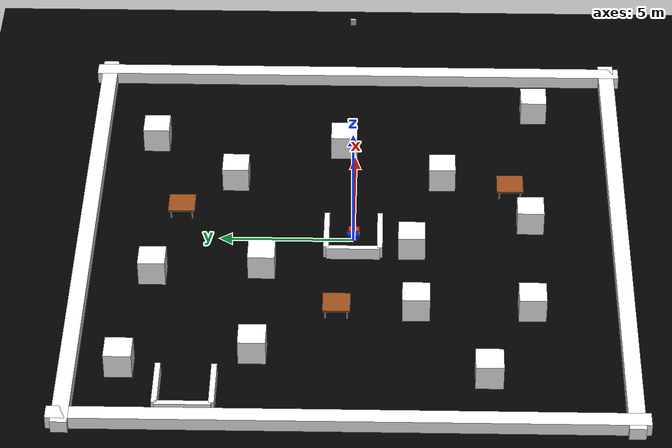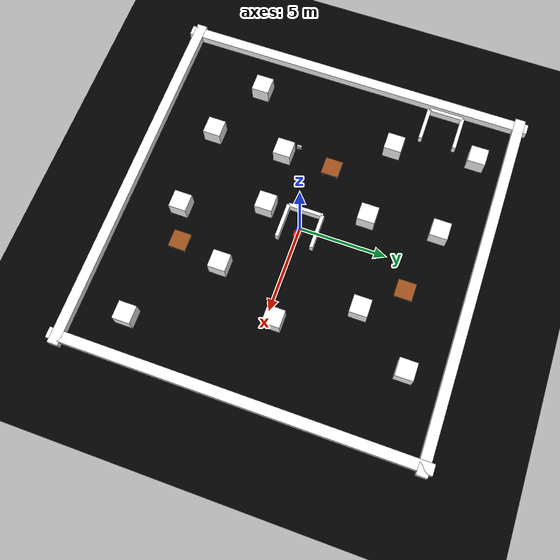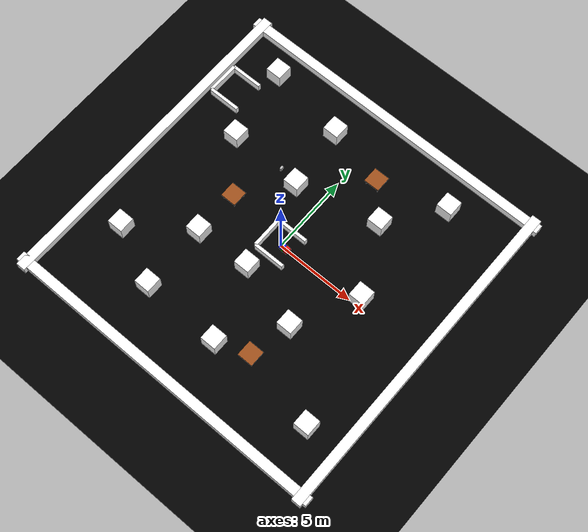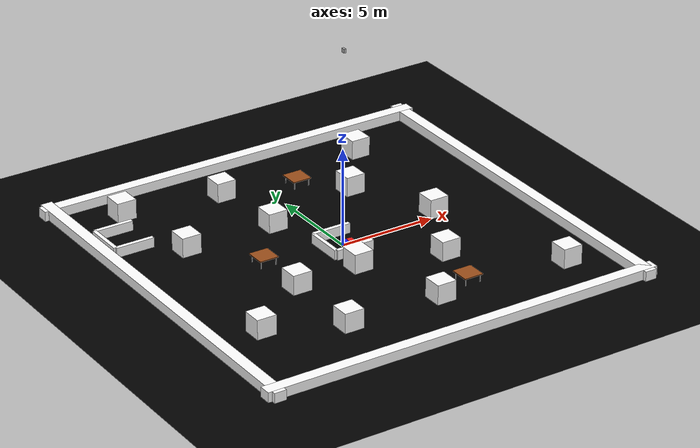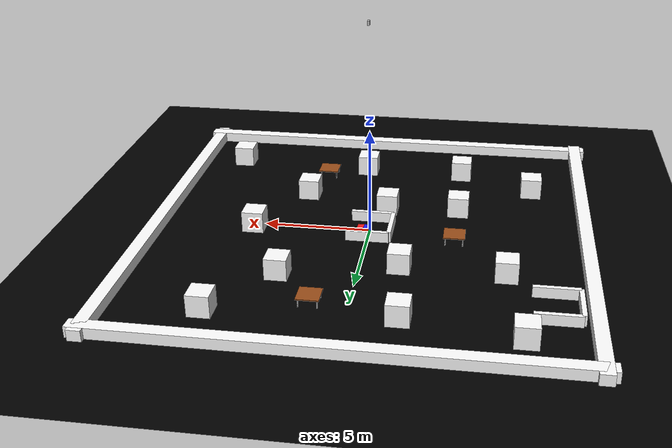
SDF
<sdf version='1.10'>
  <world name='empty'>
    <physics name='1ms' type='ignored'>
      <max_step_size>0.001</max_step_size>
      <real_time_factor>1</real_time_factor>
      <real_time_update_rate>1000</real_time_update_rate>
    </physics>
    <plugin name='gz::sim::systems::Physics' filename='gz-sim-physics-system'/>
    <plugin name='gz::sim::systems::UserCommands' filename='gz-sim-user-commands-system'/>
    <plugin name='gz::sim::systems::SceneBroadcaster' filename='gz-sim-scene-broadcaster-system'/>
    <plugin name='gz::sim::systems::Contact' filename='gz-sim-contact-system'/>
    <plugin name='gz::sim::systems::Sensors' filename='gz-sim-sensors-system'/>
    <gravity>0 0 -9.8000000000000007</gravity>
    <magnetic_field>5.5644999999999998e-06 2.2875799999999999e-05 -4.2388400000000002e-05</magnetic_field>
    <atmosphere type='adiabatic'/>
    <scene>
      <ambient>0.400000006 0.400000006 0.400000006 1</ambient>
      <background>0.699999988 0.699999988 0.699999988 1</background>
      <shadows>true</shadows>
    </scene>
    <model name='ground_plane'>
      <static>true</static>
      <link name='link'>
        <collision name='collision'>
          <geometry>
            <plane>
              <normal>0 0 1</normal>
              <size>100 100</size>
            </plane>
          </geometry>
          <surface>
            <friction>
              <ode/>
            </friction>
            <bounce/>
            <contact/>
          </surface>
        </collision>
        <visual name='visual'>
          <geometry>
            <plane>
              <normal>0 0 1</normal>
              <size>100 100</size>
            </plane>
          </geometry>
          <material>
            <ambient>0 0 0 1</ambient>
            <diffuse>0 0 0 1</diffuse>
            <specular>0 0 0 1</specular>
          </material>
        </visual>
        <pose>0 0 0 0 0 0</pose>
        <inertial>
          <pose>0 0 0 0 0 0</pose>
          <mass>1</mass>
          <inertia>
            <ixx>1</ixx>
            <ixy>0</ixy>
            <ixz>0</ixz>
            <iyy>1</iyy>
            <iyz>0</iyz>
            <izz>1</izz>
          </inertia>
        </inertial>
        <enable_wind>false</enable_wind>
      </link>
      <pose>0 0 0 0 0 0</pose>
      <self_collide>false</self_collide>
    </model>
    <model name='amr_with_markers'>
      <pose>0.28327873495508904 -0.0036391235036511062 -0.019943896375965858 -1.4163279016167854e-07 0.031948290944216605 -0.061960845039942369</pose>
      <static>false</static>
      <link name='base_link'>
        <pose>0 0 0.13 0 0 0</pose>
        <inertial>
          <mass>20</mass>
          <inertia>
            <ixx>1</ixx>
            <iyy>1</iyy>
            <izz>1</izz>
            <ixy>0</ixy>
            <ixz>0</ixz>
            <iyz>0</iyz>
          </inertia>
          <pose>0 0 0 0 0 0</pose>
        </inertial>
        <collision name='base_collision'>
          <geometry>
            <box>
              <size>0.59999999999999998 0.40000000000000002 0.17999999999999999</size>
            </box>
          </geometry>
          <surface>
            <friction>
              <ode/>
            </friction>
            <bounce/>
            <contact/>
          </surface>
        </collision>
        <visual name='base_visual_red'>
          <pose>0.14999999999999999 0 0 0 0 0</pose>
          <geometry>
            <box>
              <size>0.29999999999999999 0.40000000000000002 0.17999999999999999</size>
            </box>
          </geometry>
          <material>
            <ambient>0.899999976 0.100000001 0.100000001 1</ambient>
            <diffuse>0.949999988 0.100000001 0.100000001 1</diffuse>
          </material>
        </visual>
        <visual name='base_visual_blue'>
          <pose>-0.14999999999999999 0 0 0 0 0</pose>
          <geometry>
            <box>
              <size>0.29999999999999999 0.40000000000000002 0.17999999999999999</size>
            </box>
          </geometry>
          <material>
            <ambient>0.100000001 0.100000001 0.899999976 1</ambient>
            <diffuse>0.100000001 0.100000001 0.949999988 1</diffuse>
          </material>
        </visual>
        <enable_wind>false</enable_wind>
      </link>
      <link name='marker_front'>
        <pose>0.17999999999999949 -3.9898639947466563e-17 0.19999999999999982 -8.6736173798840355e-19 1.7076184216646695e-18 4.8572257327350599e-17</pose>
        <visual name='marker_front_visual'>
          <geometry>
            <cylinder>
              <radius>0.059999999999999998</radius>
              <length>0.02</length>
            </cylinder>
          </geometry>
          <material>
            <ambient>0.800000012 0.100000001 0.100000001 1</ambient>
            <diffuse>0.899999976 0.100000001 0.100000001 1</diffuse>
          </material>
        </visual>
        <inertial>
          <pose>0 0 0 0 0 0</pose>
          <mass>1</mass>
          <inertia>
            <ixx>1</ixx>
            <ixy>0</ixy>
            <ixz>0</ixz>
            <iyy>1</iyy>
            <iyz>0</iyz>
            <izz>1</izz>
          </inertia>
        </inertial>
        <enable_wind>false</enable_wind>
      </link>
      <link name='marker_rear'>
        <pose>-0.18000000000000044 -3.8163916471489756e-17 0.19999999999999998 -8.6736173798840355e-19 1.7076184216646695e-18 4.8572257327350599e-17</pose>
        <visual name='marker_rear_visual'>
          <geometry>
            <cylinder>
              <radius>0.059999999999999998</radius>
              <length>0.02</length>
            </cylinder>
          </geometry>
          <material>
            <ambient>0.100000001 0.100000001 0.800000012 1</ambient>
            <diffuse>0.100000001 0.100000001 0.899999976 1</diffuse>
          </material>
        </visual>
        <inertial>
          <pose>0 0 0 0 0 0</pose>
          <mass>1</mass>
          <inertia>
            <ixx>1</ixx>
            <ixy>0</ixy>
            <ixz>0</ixz>
            <iyy>1</iyy>
            <iyz>0</iyz>
            <izz>1</izz>
          </inertia>
        </inertial>
        <enable_wind>false</enable_wind>
      </link>
      <joint name='joint_marker_front' type='fixed'>
        <parent>base_link</parent>
        <child>marker_front</child>
        <pose>0 1.12104e-44 0 0 -6.2199800000000005e-60 0</pose>
      </joint>
      <joint name='joint_marker_rear' type='fixed'>
        <parent>base_link</parent>
        <child>marker_rear</child>
        <pose>0 0 0 0 -6.2199800000000005e-60 0</pose>
      </joint>
      <link name='left_wheel_link'>
        <pose>-7.2102551151864702e-09 0.19999999901340215 0.11000000404654071 1.185098994914188e-08 0.3925831217790447 4.8790899762573074e-09</pose>
        <visual name='left_wheel_visual'>
          <pose>0 0 0 1.57079632679 0 0</pose>
          <geometry>
            <cylinder>
              <radius>0.089999999999999997</radius>
              <length>0.059999999999999998</length>
            </cylinder>
          </geometry>
          <material>
            <ambient>0 0.600000024 0 1</ambient>
            <diffuse>0 0.800000012 0 1</diffuse>
          </material>
        </visual>
        <collision name='left_wheel_collision'>
          <pose>0 0 0 1.57079632679 0 0</pose>
          <geometry>
            <cylinder>
              <radius>0.089999999999999997</radius>
              <length>0.059999999999999998</length>
            </cylinder>
          </geometry>
          <surface>
            <friction>
              <ode>
                <mu>1</mu>
                <mu2>1</mu2>
              </ode>
            </friction>
            <bounce/>
            <contact/>
          </surface>
        </collision>
        <inertial>
          <pose>0 0 0 0 0 0</pose>
          <mass>1</mass>
          <inertia>
            <ixx>1</ixx>
            <ixy>0</ixy>
            <ixz>0</ixz>
            <iyy>1</iyy>
            <iyz>0</iyz>
            <izz>1</izz>
          </inertia>
        </inertial>
        <enable_wind>false</enable_wind>
      </link>
      <link name='right_wheel_link'>
        <pose>-1.8217021224842256e-09 -0.20000000025414549 0.10999999991414082 2.9181348811727638e-09 0.25927390448412618 8.3710288572921954e-10</pose>
        <visual name='right_wheel_visual'>
          <pose>0 0 0 1.57079632679 0 0</pose>
          <geometry>
            <cylinder>
              <radius>0.089999999999999997</radius>
              <length>0.059999999999999998</length>
            </cylinder>
          </geometry>
          <material>
            <ambient>0 0.600000024 0 1</ambient>
            <diffuse>0 0.800000012 0 1</diffuse>
          </material>
        </visual>
        <collision name='right_wheel_collision'>
          <pose>0 0 0 1.57079632679 0 0</pose>
          <geometry>
            <cylinder>
              <radius>0.089999999999999997</radius>
              <length>0.059999999999999998</length>
            </cylinder>
          </geometry>
          <surface>
            <friction>
              <ode>
                <mu>1</mu>
                <mu2>1</mu2>
              </ode>
            </friction>
            <bounce/>
            <contact/>
          </surface>
        </collision>
        <inertial>
          <pose>0 0 0 0 0 0</pose>
          <mass>1</mass>
          <inertia>
            <ixx>1</ixx>
            <ixy>0</ixy>
            <ixz>0</ixz>
            <iyy>1</iyy>
            <iyz>0</iyz>
            <izz>1</izz>
          </inertia>
        </inertial>
        <enable_wind>false</enable_wind>
      </link>
      <joint name='left_wheel_joint' type='revolute'>
        <parent>base_link</parent>
        <child>left_wheel_link</child>
        <axis>
          <xyz>0 1 0</xyz>
          <limit>
            <lower>-inf</lower>
            <upper>inf</upper>
            <effort>inf</effort>
            <velocity>inf</velocity>
            <stiffness>100000000</stiffness>
            <dissipation>1</dissipation>
          </limit>
          <dynamics>
            <spring_reference>0</spring_reference>
            <spring_stiffness>0</spring_stiffness>
            <damping>0</damping>
            <friction>0</friction>
          </dynamics>
        </axis>
        <pose>1.3877799999999999e-17 -2.7755599999999997e-17 -3.46945e-17 0 8.9981399999999995e-34 0</pose>
      </joint>
      <joint name='right_wheel_joint' type='revolute'>
        <parent>base_link</parent>
        <child>right_wheel_link</child>
        <axis>
          <xyz>-7.1136400041881005e-34 1 1.521046877079524e-82</xyz>
          <limit>
            <lower>-inf</lower>
            <upper>inf</upper>
            <effort>inf</effort>
            <velocity>inf</velocity>
            <stiffness>100000000</stiffness>
            <dissipation>1</dissipation>
          </limit>
          <dynamics>
            <spring_reference>0</spring_reference>
            <spring_stiffness>0</spring_stiffness>
            <damping>0</damping>
            <friction>0</friction>
          </dynamics>
        </axis>
        <pose>0 0 -6.9388900000000004e-18 1.5210499999999999e-82 4.2764200000000003e-49 7.1136399999999997e-34</pose>
      </joint>
      <link name='caster_front'>
        <pose>0.21999993660178496 -8.0594435725861446e-09 0.057000410181307998 3.1415924291067299 -0.88693995904179279 -3.1415924856121724</pose>
        <visual name='caster_front_visual'>
          <geometry>
            <sphere>
              <radius>0.029999999999999999</radius>
            </sphere>
          </geometry>
          <material>
            <ambient>0.200000003 0.200000003 0.200000003 1</ambient>
          </material>
        </visual>
        <collision name='caster_front_collision'>
          <geometry>
            <sphere>
              <radius>0.029999999999999999</radius>
            </sphere>
          </geometry>
          <surface>
            <friction>
              <ode/>
            </friction>
            <bounce/>
            <contact/>
          </surface>
        </collision>
        <inertial>
          <mass>0.02</mass>
          <pose>0 0 0 0 0 0</pose>
          <inertia>
            <ixx>1</ixx>
            <ixy>0</ixy>
            <ixz>0</ixz>
            <iyy>1</iyy>
            <iyz>0</iyz>
            <izz>1</izz>
          </inertia>
        </inertial>
        <enable_wind>false</enable_wind>
      </link>
      <joint name='caster_front_joint' type='revolute'>
        <parent>base_link</parent>
        <child>caster_front</child>
        <axis>
          <xyz>5.8899436955827296e-92 1 -1.8223031978702888e-62</xyz>
          <limit>
            <lower>-inf</lower>
            <upper>inf</upper>
            <effort>inf</effort>
            <velocity>inf</velocity>
            <stiffness>100000000</stiffness>
            <dissipation>1</dissipation>
          </limit>
          <dynamics>
            <spring_reference>0</spring_reference>
            <spring_stiffness>0</spring_stiffness>
            <damping>0</damping>
            <friction>0</friction>
          </dynamics>
        </axis>
        <pose>-2.7755599999999997e-17 -9.8607599999999995e-32 0 0 -2.8621200000000001e-30 0</pose>
      </joint>
      <link name='caster_rear'>
        <pose>-0.2200000586417887 -5.4067329120777163e-09 0.056999668690252747 3.1415922467639543 1.214703650003369 3.1415922662570672</pose>
        <visual name='caster_rear_visual'>
          <geometry>
            <sphere>
              <radius>0.029999999999999999</radius>
            </sphere>
          </geometry>
          <material>
            <ambient>0.200000003 0.200000003 0.200000003 1</ambient>
          </material>
        </visual>
        <collision name='caster_rear_collision'>
          <geometry>
            <sphere>
              <radius>0.029999999999999999</radius>
            </sphere>
          </geometry>
          <surface>
            <friction>
              <ode/>
            </friction>
            <bounce/>
            <contact/>
          </surface>
        </collision>
        <inertial>
          <mass>0.02</mass>
          <pose>0 0 0 0 0 0</pose>
          <inertia>
            <ixx>1</ixx>
            <ixy>0</ixy>
            <ixz>0</ixz>
            <iyy>1</iyy>
            <iyz>0</iyz>
            <izz>1</izz>
          </inertia>
        </inertial>
        <enable_wind>false</enable_wind>
      </link>
      <joint name='caster_rear_joint' type='revolute'>
        <parent>base_link</parent>
        <child>caster_rear</child>
        <axis>
          <xyz>2.4651903288156619e-32 1 -9.8973418179337338e-62</xyz>
          <limit>
            <lower>-inf</lower>
            <upper>inf</upper>
            <effort>inf</effort>
            <velocity>inf</velocity>
            <stiffness>100000000</stiffness>
            <dissipation>1</dissipation>
          </limit>
          <dynamics>
            <spring_reference>0</spring_reference>
            <spring_stiffness>0</spring_stiffness>
            <damping>0</damping>
            <friction>0</friction>
          </dynamics>
        </axis>
        <pose>5.5511199999999995e-17 7.3955699999999999e-32 -2.7755599999999997e-17 0 4.3376999999999999e-30 0</pose>
      </joint>
      <plugin name='ignition::gazebo::systems::DiffDrive' filename='libignition-gazebo-diff-drive-system.so'>
        <left_joint>left_wheel_joint</left_joint>
        <right_joint>right_wheel_joint</right_joint>
        <wheel_separation>0.40</wheel_separation>
        <wheel_radius>0.09</wheel_radius>
        <topic>/cmd_vel</topic>
        <frame_id>odom</frame_id>
        <child_frame_id>base_link</child_frame_id>
        <odom_publish_frequency>100</odom_publish_frequency>
      </plugin>
      <self_collide>false</self_collide>
    </model>
    <model name='box'>
      <pose>3.3872900000000001 4.5676500000000004 0.5 1.0048e-21 -2.4640900000000001e-21 -3.9210800000000001e-22</pose>
      <link name='box_link'>
        <inertial>
          <inertia>
            <ixx>0.16666</ixx>
            <ixy>0</ixy>
            <ixz>0</ixz>
            <iyy>0.16666</iyy>
            <iyz>0</iyz>
            <izz>0.16666</izz>
          </inertia>
          <mass>1</mass>
          <pose>0 0 0 0 0 0</pose>
        </inertial>
        <collision name='box_collision'>
          <geometry>
            <box>
              <size>1 1 1</size>
            </box>
          </geometry>
          <surface>
            <friction>
              <ode/>
            </friction>
            <bounce/>
            <contact/>
          </surface>
        </collision>
        <visual name='box_visual'>
          <geometry>
            <box>
              <size>1 1 1</size>
            </box>
          </geometry>
          <material>
            <ambient>1 1 1 1</ambient>
            <diffuse>1 1 1 1</diffuse>
            <specular>0.100000001 0.100000001 0.100000001 1</specular>
          </material>
        </visual>
        <pose>0 0 0 0 0 0</pose>
        <enable_wind>false</enable_wind>
      </link>
      <static>false</static>
      <self_collide>false</self_collide>
    </model>
    <model name='box_1'>
      <pose>-4.0205500000000001 -2.35168 0.5 1.0048e-21 -2.4640900000000001e-21 -3.9210800000000001e-22</pose>
      <link name='box_link'>
        <inertial>
          <inertia>
            <ixx>0.16666</ixx>
            <ixy>0</ixy>
            <ixz>0</ixz>
            <iyy>0.16666</iyy>
            <iyz>0</iyz>
            <izz>0.16666</izz>
          </inertia>
          <mass>1</mass>
          <pose>0 0 0 0 0 0</pose>
        </inertial>
        <collision name='box_collision'>
          <geometry>
            <box>
              <size>1 1 1</size>
            </box>
          </geometry>
          <surface>
            <friction>
              <ode/>
            </friction>
            <bounce/>
            <contact/>
          </surface>
        </collision>
        <visual name='box_visual'>
          <geometry>
            <box>
              <size>1 1 1</size>
            </box>
          </geometry>
          <material>
            <ambient>1 1 1 1</ambient>
            <diffuse>1 1 1 1</diffuse>
            <specular>0.100000001 0.100000001 0.100000001 1</specular>
          </material>
        </visual>
        <pose>0 0 0 0 0 0</pose>
        <enable_wind>false</enable_wind>
      </link>
      <static>false</static>
      <self_collide>false</self_collide>
    </model>
    <model name='box_2'>
      <pose>3.4940899999999999 -3.3550800000000001 0.5 1.0048e-21 -2.4640900000000001e-21 -3.9210800000000001e-22</pose>
      <link name='box_link'>
        <inertial>
          <inertia>
            <ixx>0.16666</ixx>
            <ixy>0</ixy>
            <ixz>0</ixz>
            <iyy>0.16666</iyy>
            <iyz>0</iyz>
            <izz>0.16666</izz>
          </inertia>
          <mass>1</mass>
          <pose>0 0 0 0 0 0</pose>
        </inertial>
        <collision name='box_collision'>
          <geometry>
            <box>
              <size>1 1 1</size>
            </box>
          </geometry>
          <surface>
            <friction>
              <ode/>
            </friction>
            <bounce/>
            <contact/>
          </surface>
        </collision>
        <visual name='box_visual'>
          <geometry>
            <box>
              <size>1 1 1</size>
            </box>
          </geometry>
          <material>
            <ambient>1 1 1 1</ambient>
            <diffuse>1 1 1 1</diffuse>
            <specular>0.100000001 0.100000001 0.100000001 1</specular>
          </material>
        </visual>
        <pose>0 0 0 0 0 0</pose>
        <enable_wind>false</enable_wind>
      </link>
      <static>false</static>
      <self_collide>false</self_collide>
    </model>
    <model name='box_3'>
      <pose>-1.7559 3.3625799999999999 0.5 1.0048e-21 -2.4640900000000001e-21 -3.9210800000000001e-22</pose>
      <link name='box_link'>
        <inertial>
          <inertia>
            <ixx>0.16666</ixx>
            <ixy>0</ixy>
            <ixz>0</ixz>
            <iyy>0.16666</iyy>
            <iyz>0</iyz>
            <izz>0.16666</izz>
          </inertia>
          <mass>1</mass>
          <pose>0 0 0 0 0 0</pose>
        </inertial>
        <collision name='box_collision'>
          <geometry>
            <box>
              <size>1 1 1</size>
            </box>
          </geometry>
          <surface>
            <friction>
              <ode/>
            </friction>
            <bounce/>
            <contact/>
          </surface>
        </collision>
        <visual name='box_visual'>
          <geometry>
            <box>
              <size>1 1 1</size>
            </box>
          </geometry>
          <material>
            <ambient>1 1 1 1</ambient>
            <diffuse>1 1 1 1</diffuse>
            <specular>0.100000001 0.100000001 0.100000001 1</specular>
          </material>
        </visual>
        <pose>0 0 0 0 0 0</pose>
        <enable_wind>false</enable_wind>
      </link>
      <static>false</static>
      <self_collide>false</self_collide>
    </model>
    <model name='box_4'>
      <pose>5.4301500000000003 0.44633 0.5 1.0048e-21 -2.4640900000000001e-21 -3.9210800000000001e-22</pose>
      <link name='box_link'>
        <inertial>
          <inertia>
            <ixx>0.16666</ixx>
            <ixy>0</ixy>
            <ixz>0</ixz>
            <iyy>0.16666</iyy>
            <iyz>0</iyz>
            <izz>0.16666</izz>
          </inertia>
          <mass>1</mass>
          <pose>0 0 0 0 0 0</pose>
        </inertial>
        <collision name='box_collision'>
          <geometry>
            <box>
              <size>1 1 1</size>
            </box>
          </geometry>
          <surface>
            <friction>
              <ode/>
            </friction>
            <bounce/>
            <contact/>
          </surface>
        </collision>
        <visual name='box_visual'>
          <geometry>
            <box>
              <size>1 1 1</size>
            </box>
          </geometry>
          <material>
            <ambient>1 1 1 1</ambient>
            <diffuse>1 1 1 1</diffuse>
            <specular>0.100000001 0.100000001 0.100000001 1</specular>
          </material>
        </visual>
        <pose>0 0 0 0 0 0</pose>
        <enable_wind>false</enable_wind>
      </link>
      <static>false</static>
      <self_collide>false</self_collide>
    </model>
    <model name='box_5'>
      <pose>-6.3975 3.4922399999999998 0.5 1.94562e-21 -2.0287700000000002e-21 -7.5527800000000004e-22</pose>
      <link name='box_link'>
        <inertial>
          <inertia>
            <ixx>0.16666</ixx>
            <ixy>0</ixy>
            <ixz>0</ixz>
            <iyy>0.16666</iyy>
            <iyz>0</iyz>
            <izz>0.16666</izz>
          </inertia>
          <mass>1</mass>
          <pose>0 0 0 0 0 0</pose>
        </inertial>
        <collision name='box_collision'>
          <geometry>
            <box>
              <size>1 1 1</size>
            </box>
          </geometry>
          <surface>
            <friction>
              <ode/>
            </friction>
            <bounce/>
            <contact/>
          </surface>
        </collision>
        <visual name='box_visual'>
          <geometry>
            <box>
              <size>1 1 1</size>
            </box>
          </geometry>
          <material>
            <ambient>1 1 1 1</ambient>
            <diffuse>1 1 1 1</diffuse>
            <specular>0.100000001 0.100000001 0.100000001 1</specular>
          </material>
        </visual>
        <pose>0 0 0 0 0 0</pose>
        <enable_wind>false</enable_wind>
      </link>
      <static>false</static>
      <self_collide>false</self_collide>
    </model>
    <model name='box_6'>
      <pose>-2.1597300000000001 7.3782800000000002 0.5 1.0048e-21 -2.4640900000000001e-21 -3.9210800000000001e-22</pose>
      <link name='box_link'>
        <inertial>
          <inertia>
            <ixx>0.16666</ixx>
            <ixy>0</ixy>
            <ixz>0</ixz>
            <iyy>0.16666</iyy>
            <iyz>0</iyz>
            <izz>0.16666</izz>
          </inertia>
          <mass>1</mass>
          <pose>0 0 0 0 0 0</pose>
        </inertial>
        <collision name='box_collision'>
          <geometry>
            <box>
              <size>1 1 1</size>
            </box>
          </geometry>
          <surface>
            <friction>
              <ode/>
            </friction>
            <bounce/>
            <contact/>
          </surface>
        </collision>
        <visual name='box_visual'>
          <geometry>
            <box>
              <size>1 1 1</size>
            </box>
          </geometry>
          <material>
            <ambient>1 1 1 1</ambient>
            <diffuse>1 1 1 1</diffuse>
            <specular>0.100000001 0.100000001 0.100000001 1</specular>
          </material>
        </visual>
        <pose>0 0 0 0 0 0</pose>
        <enable_wind>false</enable_wind>
      </link>
      <static>false</static>
      <self_collide>false</self_collide>
    </model>
    <model name='box_7'>
      <pose>-3.9710999999999999 -6.5805899999999999 0.5 4.5101200000000002e-21 -4.8112499999999996e-21 7.5000900000000002e-22</pose>
      <link name='box_link'>
        <inertial>
          <inertia>
            <ixx>0.16666</ixx>
            <ixy>0</ixy>
            <ixz>0</ixz>
            <iyy>0.16666</iyy>
            <iyz>0</iyz>
            <izz>0.16666</izz>
          </inertia>
          <mass>1</mass>
          <pose>0 0 0 0 0 0</pose>
        </inertial>
        <collision name='box_collision'>
          <geometry>
            <box>
              <size>1 1 1</size>
            </box>
          </geometry>
          <surface>
            <friction>
              <ode/>
            </friction>
            <bounce/>
            <contact/>
          </surface>
        </collision>
        <visual name='box_visual'>
          <geometry>
            <box>
              <size>1 1 1</size>
            </box>
          </geometry>
          <material>
            <ambient>1 1 1 1</ambient>
            <diffuse>1 1 1 1</diffuse>
            <specular>0.100000001 0.100000001 0.100000001 1</specular>
          </material>
        </visual>
        <pose>0 0 0 0 0 0</pose>
        <enable_wind>false</enable_wind>
      </link>
      <static>false</static>
      <self_collide>false</self_collide>
    </model>
    <model name='box_8'>
      <pose>0.95652599999999999 -6.6612999999999998 0.5 1.0048e-21 -2.4640900000000001e-21 -3.9210800000000001e-22</pose>
      <link name='box_link'>
        <inertial>
          <inertia>
            <ixx>0.16666</ixx>
            <ixy>0</ixy>
            <ixz>0</ixz>
            <iyy>0.16666</iyy>
            <iyz>0</iyz>
            <izz>0.16666</izz>
          </inertia>
          <mass>1</mass>
          <pose>0 0 0 0 0 0</pose>
        </inertial>
        <collision name='box_collision'>
          <geometry>
            <box>
              <size>1 1 1</size>
            </box>
          </geometry>
          <surface>
            <friction>
              <ode/>
            </friction>
            <bounce/>
            <contact/>
          </surface>
        </collision>
        <visual name='box_visual'>
          <geometry>
            <box>
              <size>1 1 1</size>
            </box>
          </geometry>
          <material>
            <ambient>1 1 1 1</ambient>
            <diffuse>1 1 1 1</diffuse>
            <specular>0.100000001 0.100000001 0.100000001 1</specular>
          </material>
        </visual>
        <pose>0 0 0 0 0 0</pose>
        <enable_wind>false</enable_wind>
      </link>
      <static>false</static>
      <self_collide>false</self_collide>
    </model>
    <model name='box_9'>
      <pose>7.7850400000000004 -6.9935799999999997 0.5 1.0048e-21 -2.4640900000000001e-21 -3.9210800000000001e-22</pose>
      <link name='box_link'>
        <inertial>
          <inertia>
            <ixx>0.16666</ixx>
            <ixy>0</ixy>
            <ixz>0</ixz>
            <iyy>0.16666</iyy>
            <iyz>0</iyz>
            <izz>0.16666</izz>
          </inertia>
          <mass>1</mass>
          <pose>0 0 0 0 0 0</pose>
        </inertial>
        <collision name='box_collision'>
          <geometry>
            <box>
              <size>1 1 1</size>
            </box>
          </geometry>
          <surface>
            <friction>
              <ode/>
            </friction>
            <bounce/>
            <contact/>
          </surface>
        </collision>
        <visual name='box_visual'>
          <geometry>
            <box>
              <size>1 1 1</size>
            </box>
          </geometry>
          <material>
            <ambient>1 1 1 1</ambient>
            <diffuse>1 1 1 1</diffuse>
            <specular>0.100000001 0.100000001 0.100000001 1</specular>
          </material>
        </visual>
        <pose>0 0 0 0 0 0</pose>
        <enable_wind>false</enable_wind>
      </link>
      <static>false</static>
      <self_collide>false</self_collide>
    </model>
    <model name='box_10'>
      <pose>-7.5438299999999998 -4.9431900000000004 0.5 1.0048e-21 -2.4640900000000001e-21 -3.9210800000000001e-22</pose>
      <link name='box_link'>
        <inertial>
          <inertia>
            <ixx>0.16666</ixx>
            <ixy>0</ixy>
            <ixz>0</ixz>
            <iyy>0.16666</iyy>
            <iyz>0</iyz>
            <izz>0.16666</izz>
          </inertia>
          <mass>1</mass>
          <pose>0 0 0 0 0 0</pose>
        </inertial>
        <collision name='box_collision'>
          <geometry>
            <box>
              <size>1 1 1</size>
            </box>
          </geometry>
          <surface>
            <friction>
              <ode/>
            </friction>
            <bounce/>
            <contact/>
          </surface>
        </collision>
        <visual name='box_visual'>
          <geometry>
            <box>
              <size>1 1 1</size>
            </box>
          </geometry>
          <material>
            <ambient>1 1 1 1</ambient>
            <diffuse>1 1 1 1</diffuse>
            <specular>0.100000001 0.100000001 0.100000001 1</specular>
          </material>
        </visual>
        <pose>0 0 0 0 0 0</pose>
        <enable_wind>false</enable_wind>
      </link>
      <static>false</static>
      <self_collide>false</self_collide>
    </model>
    <model name='box_11'>
      <pose>5.7864599999999999 7.7812200000000002 0.5 -4.49441e-22 3.38651e-21 -1.44271e-22</pose>
      <link name='box_link'>
        <inertial>
          <inertia>
            <ixx>0.16666</ixx>
            <ixy>0</ixy>
            <ixz>0</ixz>
            <iyy>0.16666</iyy>
            <iyz>0</iyz>
            <izz>0.16666</izz>
          </inertia>
          <mass>1</mass>
          <pose>0 0 0 0 0 0</pose>
        </inertial>
        <collision name='box_collision'>
          <geometry>
            <box>
              <size>1 1 1</size>
            </box>
          </geometry>
          <surface>
            <friction>
              <ode/>
            </friction>
            <bounce/>
            <contact/>
          </surface>
        </collision>
        <visual name='box_visual'>
          <geometry>
            <box>
              <size>1 1 1</size>
            </box>
          </geometry>
          <material>
            <ambient>1 1 1 1</ambient>
            <diffuse>1 1 1 1</diffuse>
            <specular>0.100000001 0.100000001 0.100000001 1</specular>
          </material>
        </visual>
        <pose>0 0 0 0 0 0</pose>
        <enable_wind>false</enable_wind>
      </link>
      <static>false</static>
      <self_collide>false</self_collide>
    </model>
    <model name='box_12'>
      <pose>-0.58569400000000005 -2.1903999999999999 0.5 1.0048e-21 -2.4640900000000001e-21 -3.9210800000000001e-22</pose>
      <link name='box_link'>
        <inertial>
          <inertia>
            <ixx>0.16666</ixx>
            <ixy>0</ixy>
            <ixz>0</ixz>
            <iyy>0.16666</iyy>
            <iyz>0</iyz>
            <izz>0.16666</izz>
          </inertia>
          <mass>1</mass>
          <pose>0 0 0 0 0 0</pose>
        </inertial>
        <collision name='box_collision'>
          <geometry>
            <box>
              <size>1 1 1</size>
            </box>
          </geometry>
          <surface>
            <friction>
              <ode/>
            </friction>
            <bounce/>
            <contact/>
          </surface>
        </collision>
        <visual name='box_visual'>
          <geometry>
            <box>
              <size>1 1 1</size>
            </box>
          </geometry>
          <material>
            <ambient>1 1 1 1</ambient>
            <diffuse>1 1 1 1</diffuse>
            <specular>0.100000001 0.100000001 0.100000001 1</specular>
          </material>
        </visual>
        <pose>0 0 0 0 0 0</pose>
        <enable_wind>false</enable_wind>
      </link>
      <static>false</static>
      <self_collide>false</self_collide>
    </model>
    <model name='box_13'>
      <pose>-7.1826499999999998 8.1921400000000002 0.5 1.0048e-21 -2.4640900000000001e-21 -3.9210800000000001e-22</pose>
      <link name='box_link'>
        <inertial>
          <inertia>
            <ixx>0.16666</ixx>
            <ixy>0</ixy>
            <ixz>0</ixz>
            <iyy>0.16666</iyy>
            <iyz>0</iyz>
            <izz>0.16666</izz>
          </inertia>
          <mass>1</mass>
          <pose>0 0 0 0 0 0</pose>
        </inertial>
        <collision name='box_collision'>
          <geometry>
            <box>
              <size>1 1 1</size>
            </box>
          </geometry>
          <surface>
            <friction>
              <ode/>
            </friction>
            <bounce/>
            <contact/>
          </surface>
        </collision>
        <visual name='box_visual'>
          <geometry>
            <box>
              <size>1 1 1</size>
            </box>
          </geometry>
          <material>
            <ambient>1 1 1 1</ambient>
            <diffuse>1 1 1 1</diffuse>
            <specular>0.100000001 0.100000001 0.100000001 1</specular>
          </material>
        </visual>
        <pose>0 0 0 0 0 0</pose>
        <enable_wind>false</enable_wind>
      </link>
      <static>false</static>
      <self_collide>false</self_collide>
    </model>
    <model name='camera_bot'>
      <link name='base_link'>
        <pose>0 0 0.050000000000000003 0 0 0</pose>
        <collision name='collision'>
          <geometry>
            <box>
              <size>0.20000000000000001 0.20000000000000001 0.10000000000000001</size>
            </box>
          </geometry>
          <surface>
            <friction>
              <ode/>
            </friction>
            <bounce/>
            <contact/>
          </surface>
        </collision>
        <visual name='visual'>
          <geometry>
            <box>
              <size>0.20000000000000001 0.20000000000000001 0.10000000000000001</size>
            </box>
          </geometry>
        </visual>
        <sensor name='top_camera' type='camera'>
          <pose>0 0 0.080000000000000002 0 0 0</pose>
          <topic>__default__</topic>
          <update_rate>30</update_rate>
          <enable_metrics>false</enable_metrics>
          <camera>
            <pose>0 0 0 0 0 0</pose>
            <horizontal_fov>1.74533</horizontal_fov>
            <image>
              <width>480</width>
              <height>480</height>
              <format>RGB_INT8</format>
              <anti_aliasing>4</anti_aliasing>
            </image>
            <camera_info_topic>__default__</camera_info_topic>
            <trigger_topic></trigger_topic>
            <triggered>false</triggered>
            <clip>
              <near>0.10000000000000001</near>
              <far>150</far>
            </clip>
            <save enabled='false'>
              <path>__default__</path>
            </save>
            <visibility_mask>4294967295</visibility_mask>
            <noise>
              <type>none</type>
              <mean>0</mean>
              <stddev>0</stddev>
            </noise>
            <distortion>
              <k1>0</k1>
              <k2>0</k2>
              <k3>0</k3>
              <p1>0</p1>
              <p2>0</p2>
              <center>0.5 0.5</center>
            </distortion>
            <lens>
              <type>stereographic</type>
              <scale_to_hfov>true</scale_to_hfov>
              <cutoff_angle>1.5707963267948966</cutoff_angle>
              <env_texture_size>256</env_texture_size>
            </lens>
            <optical_frame_id></optical_frame_id>
          </camera>
        </sensor>
        <inertial>
          <pose>0 0 0 0 0 0</pose>
          <mass>1</mass>
          <inertia>
            <ixx>1</ixx>
            <ixy>0</ixy>
            <ixz>0</ixz>
            <iyy>1</iyy>
            <iyz>0</iyz>
            <izz>1</izz>
          </inertia>
        </inertial>
        <enable_wind>false</enable_wind>
      </link>
      <static>true</static>
      <pose>2.0816700000000001e-17 0 10 0 1.5700000000004057 0</pose>
      <self_collide>false</self_collide>
    </model>
    <model name='docking_station'>
      <static>true</static>
      <pose>0 0 0 0 0 0</pose>
      <link name='back_wall'>
        <collision name='collision'>
          <geometry>
            <box>
              <size>0.20000000000000001 2 0.5</size>
            </box>
          </geometry>
          <surface>
            <friction>
              <ode/>
            </friction>
            <bounce/>
            <contact/>
          </surface>
        </collision>
        <visual name='visual'>
          <geometry>
            <box>
              <size>0.20000000000000001 2 0.5</size>
            </box>
          </geometry>
          <material>
            <ambient>1 1 1 1</ambient>
            <diffuse>1 1 1 1</diffuse>
          </material>
        </visual>
        <pose>-1 0 0.25 0 0 0</pose>
        <inertial>
          <pose>0 0 0 0 0 0</pose>
          <mass>1</mass>
          <inertia>
            <ixx>1</ixx>
            <ixy>0</ixy>
            <ixz>0</ixz>
            <iyy>1</iyy>
            <iyz>0</iyz>
            <izz>1</izz>
          </inertia>
        </inertial>
        <enable_wind>false</enable_wind>
      </link>
      <link name='left_wall'>
        <collision name='collision'>
          <geometry>
            <box>
              <size>2 0.20000000000000001 0.5</size>
            </box>
          </geometry>
          <surface>
            <friction>
              <ode/>
            </friction>
            <bounce/>
            <contact/>
          </surface>
        </collision>
        <visual name='visual'>
          <geometry>
            <box>
              <size>2 0.20000000000000001 0.5</size>
            </box>
          </geometry>
          <material>
            <ambient>1 1 1 1</ambient>
            <diffuse>1 1 1 1</diffuse>
          </material>
        </visual>
        <pose>0 -1 0.25 0 0 0</pose>
        <inertial>
          <pose>0 0 0 0 0 0</pose>
          <mass>1</mass>
          <inertia>
            <ixx>1</ixx>
            <ixy>0</ixy>
            <ixz>0</ixz>
            <iyy>1</iyy>
            <iyz>0</iyz>
            <izz>1</izz>
          </inertia>
        </inertial>
        <enable_wind>false</enable_wind>
      </link>
      <link name='right_wall'>
        <collision name='collision'>
          <geometry>
            <box>
              <size>2 0.20000000000000001 0.5</size>
            </box>
          </geometry>
          <surface>
            <friction>
              <ode/>
            </friction>
            <bounce/>
            <contact/>
          </surface>
        </collision>
        <visual name='visual'>
          <geometry>
            <box>
              <size>2 0.20000000000000001 0.5</size>
            </box>
          </geometry>
          <material>
            <ambient>1 1 1 1</ambient>
            <diffuse>1 1 1 1</diffuse>
          </material>
        </visual>
        <pose>0 1 0.25 0 0 0</pose>
        <inertial>
          <pose>0 0 0 0 0 0</pose>
          <mass>1</mass>
          <inertia>
            <ixx>1</ixx>
            <ixy>0</ixy>
            <ixz>0</ixz>
            <iyy>1</iyy>
            <iyz>0</iyz>
            <izz>1</izz>
          </inertia>
        </inertial>
        <enable_wind>false</enable_wind>
      </link>
      <self_collide>false</self_collide>
    </model>
    <model name='dining_table'>
      <static>true</static>
      <pose>2.9584100000000002 -5.9450900000000004 0 0 0 0</pose>
      <link name='top'>
        <pose>0 0 0.40000000000000002 0 0 0</pose>
        <visual name='v'>
          <geometry>
            <box>
              <size>1 1 0.050000000000000003</size>
            </box>
          </geometry>
          <material>
            <ambient>0.600000024 0.300000012 0.100000001 1</ambient>
            <diffuse>0.600000024 0.300000012 0.100000001 1</diffuse>
          </material>
        </visual>
        <collision name='c'>
          <geometry>
            <box>
              <size>1 1 0.050000000000000003</size>
            </box>
          </geometry>
          <surface>
            <friction>
              <ode/>
            </friction>
            <bounce/>
            <contact/>
          </surface>
        </collision>
        <inertial>
          <pose>0 0 0 0 0 0</pose>
          <mass>1</mass>
          <inertia>
            <ixx>1</ixx>
            <ixy>0</ixy>
            <ixz>0</ixz>
            <iyy>1</iyy>
            <iyz>0</iyz>
            <izz>1</izz>
          </inertia>
        </inertial>
        <enable_wind>false</enable_wind>
      </link>
      <link name='legs'>
        <visual name='l1'>
          <pose>0.40000000000000002 0.40000000000000002 0.20000000000000001 0 0 0</pose>
          <geometry>
            <cylinder>
              <radius>0.029999999999999999</radius>
              <length>0.40000000000000002</length>
            </cylinder>
          </geometry>
        </visual>
        <visual name='l2'>
          <pose>-0.40000000000000002 0.40000000000000002 0.20000000000000001 0 0 0</pose>
          <geometry>
            <cylinder>
              <radius>0.029999999999999999</radius>
              <length>0.40000000000000002</length>
            </cylinder>
          </geometry>
        </visual>
        <visual name='l3'>
          <pose>0.40000000000000002 -0.40000000000000002 0.20000000000000001 0 0 0</pose>
          <geometry>
            <cylinder>
              <radius>0.029999999999999999</radius>
              <length>0.40000000000000002</length>
            </cylinder>
          </geometry>
        </visual>
        <visual name='l4'>
          <pose>-0.40000000000000002 -0.40000000000000002 0.20000000000000001 0 0 0</pose>
          <geometry>
            <cylinder>
              <radius>0.029999999999999999</radius>
              <length>0.40000000000000002</length>
            </cylinder>
          </geometry>
        </visual>
        <pose>0 0 0 0 0 0</pose>
        <inertial>
          <pose>0 0 0 0 0 0</pose>
          <mass>1</mass>
          <inertia>
            <ixx>1</ixx>
            <ixy>0</ixy>
            <ixz>0</ixz>
            <iyy>1</iyy>
            <iyz>0</iyz>
            <izz>1</izz>
          </inertia>
        </inertial>
        <enable_wind>false</enable_wind>
      </link>
      <self_collide>false</self_collide>
    </model>
    <model name='border_walls'>
      <static>true</static>
      <link name='north_wall'>
        <pose>0 10 0.25 0 0 0</pose>
        <collision name='north_collision'>
          <geometry>
            <box>
              <size>21 0.59999999999999998 0.5</size>
            </box>
          </geometry>
          <surface>
            <friction>
              <ode/>
            </friction>
            <bounce/>
            <contact/>
          </surface>
        </collision>
        <visual name='north_visual'>
          <geometry>
            <box>
              <size>21 0.59999999999999998 0.5</size>
            </box>
          </geometry>
          <material>
            <ambient>1 1 1 1</ambient>
            <diffuse>1 1 1 1</diffuse>
            <specular>0 0 0 1</specular>
          </material>
        </visual>
        <inertial>
          <pose>0 0 0 0 0 0</pose>
          <mass>1</mass>
          <inertia>
            <ixx>1</ixx>
            <ixy>0</ixy>
            <ixz>0</ixz>
            <iyy>1</iyy>
            <iyz>0</iyz>
            <izz>1</izz>
          </inertia>
        </inertial>
        <enable_wind>false</enable_wind>
      </link>
      <link name='south_wall'>
        <pose>0 -10 0.25 0 0 0</pose>
        <collision name='south_collision'>
          <geometry>
            <box>
              <size>21 0.59999999999999998 0.5</size>
            </box>
          </geometry>
          <surface>
            <friction>
              <ode/>
            </friction>
            <bounce/>
            <contact/>
          </surface>
        </collision>
        <visual name='south_visual'>
          <geometry>
            <box>
              <size>21 0.59999999999999998 0.5</size>
            </box>
          </geometry>
          <material>
            <ambient>1 1 1 1</ambient>
            <diffuse>1 1 1 1</diffuse>
            <specular>0 0 0 1</specular>
          </material>
        </visual>
        <inertial>
          <pose>0 0 0 0 0 0</pose>
          <mass>1</mass>
          <inertia>
            <ixx>1</ixx>
            <ixy>0</ixy>
            <ixz>0</ixz>
            <iyy>1</iyy>
            <iyz>0</iyz>
            <izz>1</izz>
          </inertia>
        </inertial>
        <enable_wind>false</enable_wind>
      </link>
      <link name='east_wall'>
        <pose>10 0 0.25 0 0 0</pose>
        <collision name='east_collision'>
          <geometry>
            <box>
              <size>0.59999999999999998 21 0.5</size>
            </box>
          </geometry>
          <surface>
            <friction>
              <ode/>
            </friction>
            <bounce/>
            <contact/>
          </surface>
        </collision>
        <visual name='east_visual'>
          <geometry>
            <box>
              <size>0.59999999999999998 21 0.5</size>
            </box>
          </geometry>
          <material>
            <ambient>1 1 1 1</ambient>
            <diffuse>1 1 1 1</diffuse>
            <specular>0 0 0 1</specular>
          </material>
        </visual>
        <inertial>
          <pose>0 0 0 0 0 0</pose>
          <mass>1</mass>
          <inertia>
            <ixx>1</ixx>
            <ixy>0</ixy>
            <ixz>0</ixz>
            <iyy>1</iyy>
            <iyz>0</iyz>
            <izz>1</izz>
          </inertia>
        </inertial>
        <enable_wind>false</enable_wind>
      </link>
      <link name='west_wall'>
        <pose>-10 0 0.25 0 0 0</pose>
        <collision name='west_collision'>
          <geometry>
            <box>
              <size>0.59999999999999998 21 0.5</size>
            </box>
          </geometry>
          <surface>
            <friction>
              <ode/>
            </friction>
            <bounce/>
            <contact/>
          </surface>
        </collision>
        <visual name='west_visual'>
          <geometry>
            <box>
              <size>0.59999999999999998 21 0.5</size>
            </box>
          </geometry>
          <material>
            <ambient>1 1 1 1</ambient>
            <diffuse>1 1 1 1</diffuse>
            <specular>0 0 0 1</specular>
          </material>
        </visual>
        <inertial>
          <pose>0 0 0 0 0 0</pose>
          <mass>1</mass>
          <inertia>
            <ixx>1</ixx>
            <ixy>0</ixy>
            <ixz>0</ixz>
            <iyy>1</iyy>
            <iyz>0</iyz>
            <izz>1</izz>
          </inertia>
        </inertial>
        <enable_wind>false</enable_wind>
      </link>
      <pose>0 0 0 0 0 0</pose>
      <self_collide>false</self_collide>
    </model>
    <model name='dining_table_1'>
      <static>true</static>
      <pose>1.6057399999999999 6.54209 0 0 0 0</pose>
      <link name='top'>
        <pose>0 0 0.40000000000000002 0 0 0</pose>
        <visual name='v'>
          <geometry>
            <box>
              <size>1 1 0.050000000000000003</size>
            </box>
          </geometry>
          <material>
            <ambient>0.600000024 0.300000012 0.100000001 1</ambient>
            <diffuse>0.600000024 0.300000012 0.100000001 1</diffuse>
          </material>
        </visual>
        <collision name='c'>
          <geometry>
            <box>
              <size>1 1 0.050000000000000003</size>
            </box>
          </geometry>
          <surface>
            <friction>
              <ode/>
            </friction>
            <bounce/>
            <contact/>
          </surface>
        </collision>
        <inertial>
          <pose>0 0 0 0 0 0</pose>
          <mass>1</mass>
          <inertia>
            <ixx>1</ixx>
            <ixy>0</ixy>
            <ixz>0</ixz>
            <iyy>1</iyy>
            <iyz>0</iyz>
            <izz>1</izz>
          </inertia>
        </inertial>
        <enable_wind>false</enable_wind>
      </link>
      <link name='legs'>
        <visual name='l1'>
          <pose>0.40000000000000002 0.40000000000000002 0.20000000000000001 0 0 0</pose>
          <geometry>
            <cylinder>
              <radius>0.029999999999999999</radius>
              <length>0.40000000000000002</length>
            </cylinder>
          </geometry>
        </visual>
        <visual name='l2'>
          <pose>-0.40000000000000002 0.40000000000000002 0.20000000000000001 0 0 0</pose>
          <geometry>
            <cylinder>
              <radius>0.029999999999999999</radius>
              <length>0.40000000000000002</length>
            </cylinder>
          </geometry>
        </visual>
        <visual name='l3'>
          <pose>0.40000000000000002 -0.40000000000000002 0.20000000000000001 0 0 0</pose>
          <geometry>
            <cylinder>
              <radius>0.029999999999999999</radius>
              <length>0.40000000000000002</length>
            </cylinder>
          </geometry>
        </visual>
        <visual name='l4'>
          <pose>-0.40000000000000002 -0.40000000000000002 0.20000000000000001 0 0 0</pose>
          <geometry>
            <cylinder>
              <radius>0.029999999999999999</radius>
              <length>0.40000000000000002</length>
            </cylinder>
          </geometry>
        </visual>
        <pose>0 0 0 0 0 0</pose>
        <inertial>
          <pose>0 0 0 0 0 0</pose>
          <mass>1</mass>
          <inertia>
            <ixx>1</ixx>
            <ixy>0</ixy>
            <ixz>0</ixz>
            <iyy>1</iyy>
            <iyz>0</iyz>
            <izz>1</izz>
          </inertia>
        </inertial>
        <enable_wind>false</enable_wind>
      </link>
      <self_collide>false</self_collide>
    </model>
    <model name='dining_table_2'>
      <static>true</static>
      <pose>-3.9954200000000002 0.54617899999999997 0 0 0 0</pose>
      <link name='top'>
        <pose>0 0 0.40000000000000002 0 0 0</pose>
        <visual name='v'>
          <geometry>
            <box>
              <size>1 1 0.050000000000000003</size>
            </box>
          </geometry>
          <material>
            <ambient>0.600000024 0.300000012 0.100000001 1</ambient>
            <diffuse>0.600000024 0.300000012 0.100000001 1</diffuse>
          </material>
        </visual>
        <collision name='c'>
          <geometry>
            <box>
              <size>1 1 0.050000000000000003</size>
            </box>
          </geometry>
          <surface>
            <friction>
              <ode/>
            </friction>
            <bounce/>
            <contact/>
          </surface>
        </collision>
        <inertial>
          <pose>0 0 0 0 0 0</pose>
          <mass>1</mass>
          <inertia>
            <ixx>1</ixx>
            <ixy>0</ixy>
            <ixz>0</ixz>
            <iyy>1</iyy>
            <iyz>0</iyz>
            <izz>1</izz>
          </inertia>
        </inertial>
        <enable_wind>false</enable_wind>
      </link>
      <link name='legs'>
        <visual name='l1'>
          <pose>0.40000000000000002 0.40000000000000002 0.20000000000000001 0 0 0</pose>
          <geometry>
            <cylinder>
              <radius>0.029999999999999999</radius>
              <length>0.40000000000000002</length>
            </cylinder>
          </geometry>
        </visual>
        <visual name='l2'>
          <pose>-0.40000000000000002 0.40000000000000002 0.20000000000000001 0 0 0</pose>
          <geometry>
            <cylinder>
              <radius>0.029999999999999999</radius>
              <length>0.40000000000000002</length>
            </cylinder>
          </geometry>
        </visual>
        <visual name='l3'>
          <pose>0.40000000000000002 -0.40000000000000002 0.20000000000000001 0 0 0</pose>
          <geometry>
            <cylinder>
              <radius>0.029999999999999999</radius>
              <length>0.40000000000000002</length>
            </cylinder>
          </geometry>
        </visual>
        <visual name='l4'>
          <pose>-0.40000000000000002 -0.40000000000000002 0.20000000000000001 0 0 0</pose>
          <geometry>
            <cylinder>
              <radius>0.029999999999999999</radius>
              <length>0.40000000000000002</length>
            </cylinder>
          </geometry>
        </visual>
        <pose>0 0 0 0 0 0</pose>
        <inertial>
          <pose>0 0 0 0 0 0</pose>
          <mass>1</mass>
          <inertia>
            <ixx>1</ixx>
            <ixy>0</ixy>
            <ixz>0</ixz>
            <iyy>1</iyy>
            <iyz>0</iyz>
            <izz>1</izz>
          </inertia>
        </inertial>
        <enable_wind>false</enable_wind>
      </link>
      <self_collide>false</self_collide>
    </model>
    <model name='docking_station_1'>
      <static>true</static>
      <pose>-8.4490999999999996 5.7800399999999996 0 0 0 0</pose>
      <link name='back_wall'>
        <collision name='collision'>
          <geometry>
            <box>
              <size>0.20000000000000001 2 0.5</size>
            </box>
          </geometry>
          <surface>
            <friction>
              <ode/>
            </friction>
            <bounce/>
            <contact/>
          </surface>
        </collision>
        <visual name='visual'>
          <geometry>
            <box>
              <size>0.20000000000000001 2 0.5</size>
            </box>
          </geometry>
          <material>
            <ambient>1 1 1 1</ambient>
            <diffuse>1 1 1 1</diffuse>
          </material>
        </visual>
        <pose>-1 0 0.25 0 0 0</pose>
        <inertial>
          <pose>0 0 0 0 0 0</pose>
          <mass>1</mass>
          <inertia>
            <ixx>1</ixx>
            <ixy>0</ixy>
            <ixz>0</ixz>
            <iyy>1</iyy>
            <iyz>0</iyz>
            <izz>1</izz>
          </inertia>
        </inertial>
        <enable_wind>false</enable_wind>
      </link>
      <link name='left_wall'>
        <collision name='collision'>
          <geometry>
            <box>
              <size>2 0.20000000000000001 0.5</size>
            </box>
          </geometry>
          <surface>
            <friction>
              <ode/>
            </friction>
            <bounce/>
            <contact/>
          </surface>
        </collision>
        <visual name='visual'>
          <geometry>
            <box>
              <size>2 0.20000000000000001 0.5</size>
            </box>
          </geometry>
          <material>
            <ambient>1 1 1 1</ambient>
            <diffuse>1 1 1 1</diffuse>
          </material>
        </visual>
        <pose>0 -1 0.25 0 0 0</pose>
        <inertial>
          <pose>0 0 0 0 0 0</pose>
          <mass>1</mass>
          <inertia>
            <ixx>1</ixx>
            <ixy>0</ixy>
            <ixz>0</ixz>
            <iyy>1</iyy>
            <iyz>0</iyz>
            <izz>1</izz>
          </inertia>
        </inertial>
        <enable_wind>false</enable_wind>
      </link>
      <link name='right_wall'>
        <collision name='collision'>
          <geometry>
            <box>
              <size>2 0.20000000000000001 0.5</size>
            </box>
          </geometry>
          <surface>
            <friction>
              <ode/>
            </friction>
            <bounce/>
            <contact/>
          </surface>
        </collision>
        <visual name='visual'>
          <geometry>
            <box>
              <size>2 0.20000000000000001 0.5</size>
            </box>
          </geometry>
          <material>
            <ambient>1 1 1 1</ambient>
            <diffuse>1 1 1 1</diffuse>
          </material>
        </visual>
        <pose>0 1 0.25 0 0 0</pose>
        <inertial>
          <pose>0 0 0 0 0 0</pose>
          <mass>1</mass>
          <inertia>
            <ixx>1</ixx>
            <ixy>0</ixy>
            <ixz>0</ixz>
            <iyy>1</iyy>
            <iyz>0</iyz>
            <izz>1</izz>
          </inertia>
        </inertial>
        <enable_wind>false</enable_wind>
      </link>
      <self_collide>false</self_collide>
    </model>
    <light name='sun' type='directional'>
      <pose>0 0 10 0 0 0</pose>
      <cast_shadows>true</cast_shadows>
      <intensity>1</intensity>
      <direction>-0.5 0.10000000000000001 -0.90000000000000002</direction>
      <diffuse>0.800000012 0.800000012 0.800000012 1</diffuse>
      <specular>0.200000003 0.200000003 0.200000003 1</specular>
      <attenuation>
        <range>1000</range>
        <linear>0.0099999997764825821</linear>
        <constant>0.89999997615814209</constant>
        <quadratic>0.0010000000474974513</quadratic>
      </attenuation>
      <spot>
        <inner_angle>0</inner_angle>
        <outer_angle>0</outer_angle>
        <falloff>0</falloff>
      </spot>
    </light>
  </world>
</sdf>
